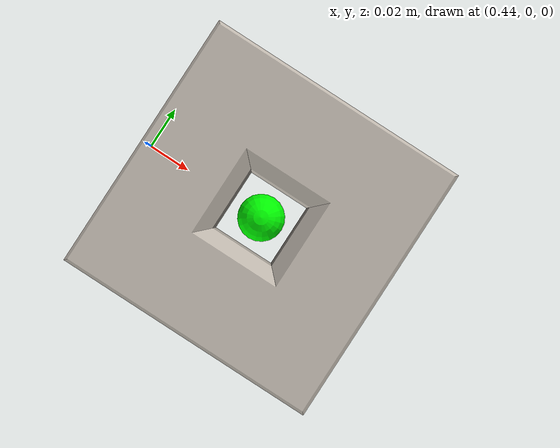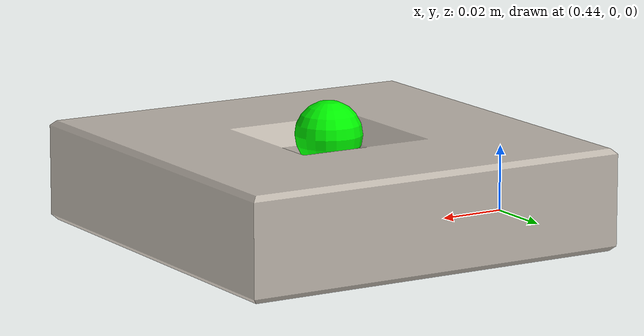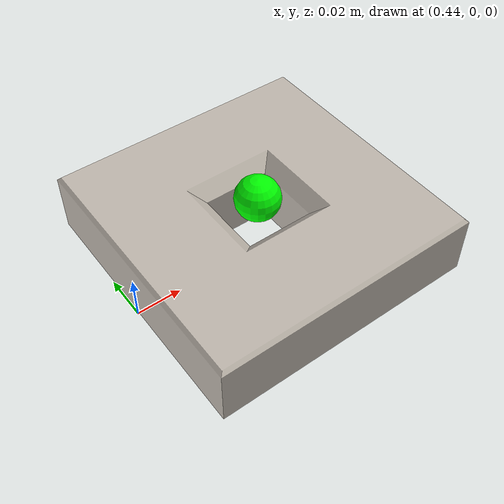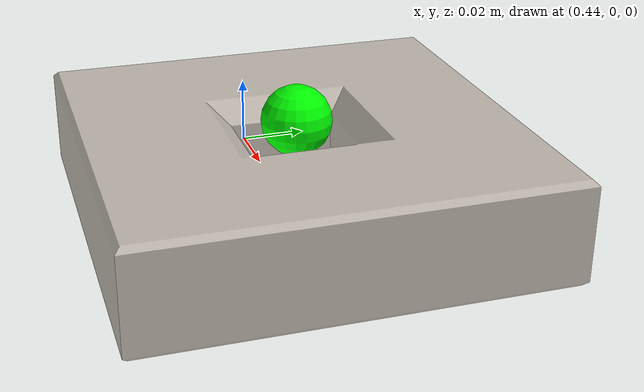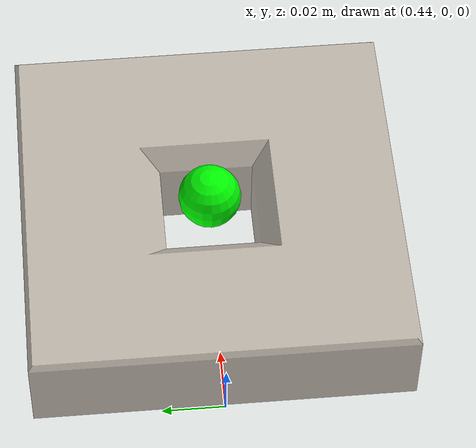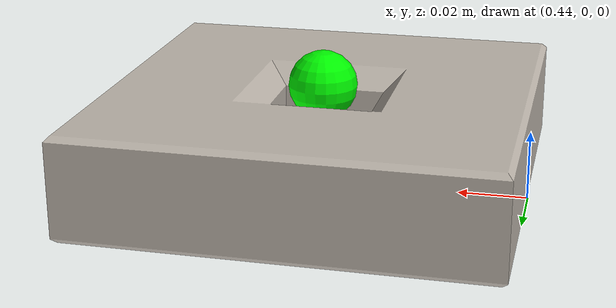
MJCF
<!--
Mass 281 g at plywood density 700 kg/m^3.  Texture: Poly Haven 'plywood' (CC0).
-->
<?xml version="1.0"?>
<mujoco model="hole_board">
  <compiler angle="radian" meshdir="assets" texturedir="assets"/>

  <asset>
    <texture name="hole_board_tex" type="2d" file="hole_board_tex.png"/>
    <material name="hole_board_mat" texture="hole_board_tex" specular="0.15" shininess="0.15"/>
    <mesh name="hole_board_vis" file="hole_board_vis.obj"/>
  </asset>

  <default>
    <default class="hole_col">
      <geom type="box" group="3" rgba="0.5 0.5 0.5 0.3" mass="0" condim="3"
            friction="1 0.03 0.003" contype="1" conaffinity="1" solref="0.01 1"/>
    </default>
  </default>

  <worldbody>
    <body name="hole_board" pos="0.5 0 0.015">
      <freejoint name="hole_board_joint"/>
      <inertial pos="0 0 0" quat="0.707107 0 0 -0.707107" mass="0.28104"
                diaginertia="3.574e-04 3.574e-04 6.729e-04"/>
      <geom name="hole_board_visual" type="mesh" mesh="hole_board_vis"
            material="hole_board_mat" contype="0" conaffinity="0" group="2" mass="0"/>

      <!-- Bore walls: 30 mm square gap, z in [-0.015, +0.009]. -->
      <geom class="hole_col" name="hole_wall_px" pos="0.0375 0 -0.003" size="0.0225 0.06 0.012"/>
      <geom class="hole_col" name="hole_wall_nx" pos="-0.0375 0 -0.003" size="0.0225 0.06 0.012"/>
      <geom class="hole_col" name="hole_wall_py" pos="0 0.0375 -0.003" size="0.015 0.0225 0.012"/>
      <geom class="hole_col" name="hole_wall_ny" pos="0 -0.0375 -0.003" size="0.015 0.0225 0.012"/>
      <!-- Flat top face outside the 42 mm chamfer mouth. -->
      <geom class="hole_col" name="hole_rim_px" pos="0.0405 0 0.012" size="0.0195 0.06 0.003"/>
      <geom class="hole_col" name="hole_rim_nx" pos="-0.0405 0 0.012" size="0.0195 0.06 0.003"/>
      <geom class="hole_col" name="hole_rim_py" pos="0 0.0405 0.012" size="0.021 0.0195 0.003"/>
      <geom class="hole_col" name="hole_rim_ny" pos="0 -0.0405 0.012" size="0.021 0.0195 0.003"/>
      <!-- 45 deg lead-in: gap 42 mm at z=+0.015 narrowing to 30 mm at z=+0.009. -->
      <geom class="hole_col" name="hole_chamfer_px" pos="0.023657 0 0.006343"
            size="0.008 0.021 0.0042426" quat="0.9238795 0 0.3826834 0"/>
      <geom class="hole_col" name="hole_chamfer_nx" pos="-0.023657 0 0.006343"
            size="0.008 0.021 0.0042426" quat="0.9238795 0 -0.3826834 0"/>
      <geom class="hole_col" name="hole_chamfer_py" pos="0 0.023657 0.006343"
            size="0.021 0.008 0.0042426" quat="0.9238795 -0.3826834 0 0"/>
      <geom class="hole_col" name="hole_chamfer_ny" pos="0 -0.023657 0.006343"
            size="0.021 0.008 0.0042426" quat="0.9238795 0.3826834 0 0"/>

      <!-- Site at the hole CENTRE on the top face: the insertion target. -->
      <site name="object_site" pos="0 0 0.015" size="0.01" rgba="0 1 0 1"/>
    </body>
  </worldbody>
</mujoco>
